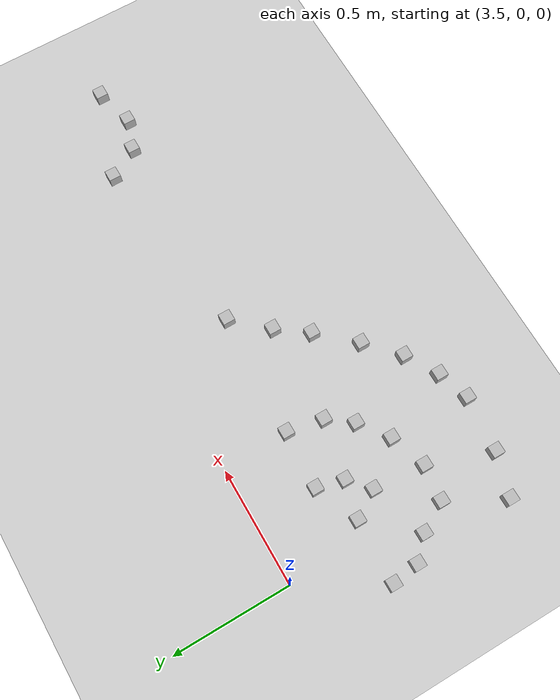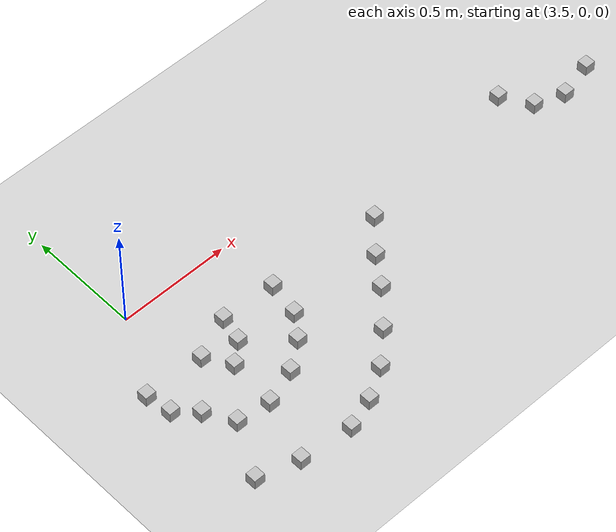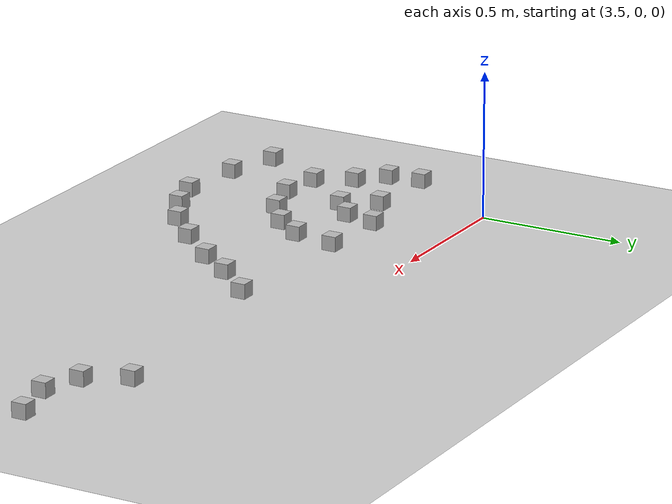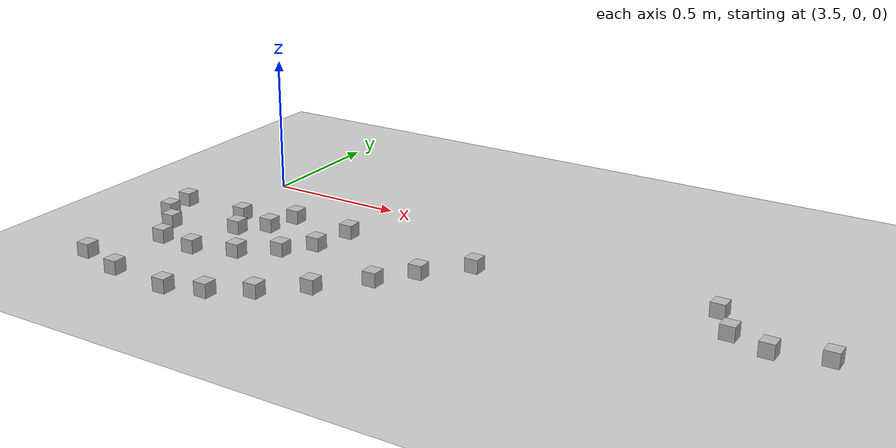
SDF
<sdf version="1.4">
 <world name="default">
  <model name="ground_plane">
   <static>1</static>
   <link name="link">
    <collision name="collision">
     <geometry><plane><normal>0 0 1</normal><size>100 100</size></plane></geometry>
     <surface><friction><ode><mu>100</mu><mu2>50</mu2></ode></friction></surface>
    </collision>
    <visual name="visual">
     <cast_shadows>0</cast_shadows>
     <geometry><plane><normal>0 0 1</normal><size>100 100</size></plane></geometry>
     <material>
      <script><uri>file://media/materials/scripts/gazebo.material</uri><name>Gazebo/Grey</name></script>
     </material>
    </visual>
    <velocity_decay><linear>0</linear><angular>0</angular></velocity_decay>
   </link>
  </model>
  <model name="at11">
   <static>0</static>
   <link name="link">
    <inertial>
     <mass>0.01</mass>
     <inertia><ixx>4e-05</ixx><ixy>0</ixy><ixz>0</ixz><iyy>4e-05</iyy><iyz>0</iyz><izz>4e-05</izz></inertia>
    </inertial>
    <visual name="visual">
     <geometry><box><size>0.05 0.05 0.05</size></box></geometry>
     <material>
      <script>
       <uri>model://at0/materials/scripts</uri>
       <uri>model://at0/materials/textures</uri>
       <name>at0/Diffuse</name>
      </script>
     </material>
    </visual>
    <collision name="collision">
     <geometry><box><size>0.05 0.05 0.05</size></box></geometry>
     <surface><friction><ode><mu>0.8</mu><mu2>0.7</mu2></ode></friction></surface>
    </collision>
    <velocity_decay><linear>0</linear><angular>0</angular></velocity_decay>
   </link>
   <pose>4.53442 -0.307039 0.025 0 -0 0</pose>
  </model>
  <model name="at27">
   <static>0</static>
   <link name="link">
    <inertial>
     <mass>0.01</mass>
     <inertia><ixx>4e-05</ixx><ixy>0</ixy><ixz>0</ixz><iyy>4e-05</iyy><iyz>0</iyz><izz>4e-05</izz></inertia>
    </inertial>
    <visual name="visual">
     <geometry><box><size>0.05 0.05 0.05</size></box></geometry>
     <material>
      <script>
       <uri>model://at0/materials/scripts</uri>
       <uri>model://at0/materials/textures</uri>
       <name>at0/Diffuse</name>
      </script>
     </material>
    </visual>
    <collision name="collision">
     <geometry><box><size>0.05 0.05 0.05</size></box></geometry>
     <surface><friction><ode><mu>0.8</mu><mu2>0.7</mu2></ode></friction></surface>
    </collision>
    <velocity_decay><linear>0</linear><angular>0</angular></velocity_decay>
   </link>
   <pose>4.40493 -0.446845 0.025 0 -0 0</pose>
  </model>
  <model name="at34">
   <static>0</static>
   <link name="link">
    <inertial>
     <mass>0.01</mass>
     <inertia><ixx>4e-05</ixx><ixy>0</ixy><ixz>0</ixz><iyy>4e-05</iyy><iyz>0</iyz><izz>4e-05</izz></inertia>
    </inertial>
    <visual name="visual">
     <geometry><box><size>0.05 0.05 0.05</size></box></geometry>
     <material>
      <script>
       <uri>model://at0/materials/scripts</uri>
       <uri>model://at0/materials/textures</uri>
       <name>at0/Diffuse</name>
      </script>
     </material>
    </visual>
    <collision name="collision">
     <geometry><box><size>0.05 0.05 0.05</size></box></geometry>
     <surface><friction><ode><mu>0.8</mu><mu2>0.7</mu2></ode></friction></surface>
    </collision>
    <velocity_decay><linear>0</linear><angular>0</angular></velocity_decay>
   </link>
   <pose>5.72105 -0.337039 0.025 0 -0 0</pose>
  </model>
  <model name="at38">
   <static>0</static>
   <link name="link">
    <inertial>
     <mass>0.01</mass>
     <inertia><ixx>4e-05</ixx><ixy>0</ixy><ixz>0</ixz><iyy>4e-05</iyy><iyz>0</iyz><izz>4e-05</izz></inertia>
    </inertial>
    <visual name="visual">
     <geometry><box><size>0.05 0.05 0.05</size></box></geometry>
     <material>
      <script>
       <uri>model://at0/materials/scripts</uri>
       <uri>model://at0/materials/textures</uri>
       <name>at0/Diffuse</name>
      </script>
     </material>
    </visual>
    <collision name="collision">
     <geometry><box><size>0.05 0.05 0.05</size></box></geometry>
     <surface><friction><ode><mu>0.8</mu><mu2>0.7</mu2></ode></friction></surface>
    </collision>
    <velocity_decay><linear>0</linear><angular>0</angular></velocity_decay>
   </link>
   <pose>4.31081 -0.573998 0.025 0 -0 0</pose>
  </model>
  <model name="at39">
   <static>0</static>
   <link name="link">
    <inertial>
     <mass>0.01</mass>
     <inertia><ixx>4e-05</ixx><ixy>0</ixy><ixz>0</ixz><iyy>4e-05</iyy><iyz>0</iyz><izz>4e-05</izz></inertia>
    </inertial>
    <visual name="visual">
     <geometry><box><size>0.05 0.05 0.05</size></box></geometry>
     <material>
      <script>
       <uri>model://at0/materials/scripts</uri>
       <uri>model://at0/materials/textures</uri>
       <name>at0/Diffuse</name>
      </script>
     </material>
    </visual>
    <collision name="collision">
     <geometry><box><size>0.05 0.05 0.05</size></box></geometry>
     <surface><friction><ode><mu>0.8</mu><mu2>0.7</mu2></ode></friction></surface>
    </collision>
    <velocity_decay><linear>0</linear><angular>0</angular></velocity_decay>
   </link>
   <pose>3.77122 -0.966515 0.025 0 -0 0</pose>
  </model>
  <model name="at42">
   <static>0</static>
   <link name="link">
    <inertial>
     <mass>0.01</mass>
     <inertia><ixx>4e-05</ixx><ixy>0</ixy><ixz>0</ixz><iyy>4e-05</iyy><iyz>0</iyz><izz>4e-05</izz></inertia>
    </inertial>
    <visual name="visual">
     <geometry><box><size>0.05 0.05 0.05</size></box></geometry>
     <material>
      <script>
       <uri>model://at0/materials/scripts</uri>
       <uri>model://at0/materials/textures</uri>
       <name>at0/Diffuse</name>
      </script>
     </material>
    </visual>
    <collision name="collision">
     <geometry><box><size>0.05 0.05 0.05</size></box></geometry>
     <surface><friction><ode><mu>0.8</mu><mu2>0.7</mu2></ode></friction></surface>
    </collision>
    <velocity_decay><linear>0</linear><angular>0</angular></velocity_decay>
   </link>
   <pose>5.33945 -0.204264 0.025 0 -0 0</pose>
  </model>
  <model name="at46">
   <static>0</static>
   <link name="link">
    <inertial>
     <mass>0.01</mass>
     <inertia><ixx>4e-05</ixx><ixy>0</ixy><ixz>0</ixz><iyy>4e-05</iyy><iyz>0</iyz><izz>4e-05</izz></inertia>
    </inertial>
    <visual name="visual">
     <geometry><box><size>0.05 0.05 0.05</size></box></geometry>
     <material>
      <script>
       <uri>model://at0/materials/scripts</uri>
       <uri>model://at0/materials/textures</uri>
       <name>at0/Diffuse</name>
      </script>
     </material>
    </visual>
    <collision name="collision">
     <geometry><box><size>0.05 0.05 0.05</size></box></geometry>
     <surface><friction><ode><mu>0.8</mu><mu2>0.7</mu2></ode></friction></surface>
    </collision>
    <velocity_decay><linear>0</linear><angular>0</angular></velocity_decay>
   </link>
   <pose>4.17487 -0.722575 0.025 0 -0 0</pose>
  </model>
  <model name="at47">
   <static>0</static>
   <link name="link">
    <inertial>
     <mass>0.01</mass>
     <inertia><ixx>4e-05</ixx><ixy>0</ixy><ixz>0</ixz><iyy>4e-05</iyy><iyz>0</iyz><izz>4e-05</izz></inertia>
    </inertial>
    <visual name="visual">
     <geometry><box><size>0.05 0.05 0.05</size></box></geometry>
     <material>
      <script>
       <uri>model://at0/materials/scripts</uri>
       <uri>model://at0/materials/textures</uri>
       <name>at0/Diffuse</name>
      </script>
     </material>
    </visual>
    <collision name="collision">
     <geometry><box><size>0.05 0.05 0.05</size></box></geometry>
     <surface><friction><ode><mu>0.8</mu><mu2>0.7</mu2></ode></friction></surface>
    </collision>
    <velocity_decay><linear>0</linear><angular>0</angular></velocity_decay>
   </link>
   <pose>3.53615 -0.942051 0.025 0 -0 0</pose>
  </model>
  <model name="at52">
   <static>0</static>
   <link name="link">
    <inertial>
     <mass>0.01</mass>
     <inertia><ixx>4e-05</ixx><ixy>0</ixy><ixz>0</ixz><iyy>4e-05</iyy><iyz>0</iyz><izz>4e-05</izz></inertia>
    </inertial>
    <visual name="visual">
     <geometry><box><size>0.05 0.05 0.05</size></box></geometry>
     <material>
      <script>
       <uri>model://at0/materials/scripts</uri>
       <uri>model://at0/materials/textures</uri>
       <name>at0/Diffuse</name>
      </script>
     </material>
    </visual>
    <collision name="collision">
     <geometry><box><size>0.05 0.05 0.05</size></box></geometry>
     <surface><friction><ode><mu>0.8</mu><mu2>0.7</mu2></ode></friction></surface>
    </collision>
    <velocity_decay><linear>0</linear><angular>0</angular></velocity_decay>
   </link>
   <pose>5.41615 -0.334873 0.025 0 -0 0</pose>
  </model>
  <model name="at53">
   <static>0</static>
   <link name="link">
    <inertial>
     <mass>0.01</mass>
     <inertia><ixx>4e-05</ixx><ixy>0</ixy><ixz>0</ixz><iyy>4e-05</iyy><iyz>0</iyz><izz>4e-05</izz></inertia>
    </inertial>
    <visual name="visual">
     <geometry><box><size>0.05 0.05 0.05</size></box></geometry>
     <material>
      <script>
       <uri>model://at0/materials/scripts</uri>
       <uri>model://at0/materials/textures</uri>
       <name>at0/Diffuse</name>
      </script>
     </material>
    </visual>
    <collision name="collision">
     <geometry><box><size>0.05 0.05 0.05</size></box></geometry>
     <surface><friction><ode><mu>0.8</mu><mu2>0.7</mu2></ode></friction></surface>
    </collision>
    <velocity_decay><linear>0</linear><angular>0</angular></velocity_decay>
   </link>
   <pose>5.54955 -0.381223 0.025 0 -0 0</pose>
  </model>
  <model name="at54">
   <static>0</static>
   <link name="link">
    <inertial>
     <mass>0.01</mass>
     <inertia><ixx>4e-05</ixx><ixy>0</ixy><ixz>0</ixz><iyy>4e-05</iyy><iyz>0</iyz><izz>4e-05</izz></inertia>
    </inertial>
    <visual name="visual">
     <geometry><box><size>0.05 0.05 0.05</size></box></geometry>
     <material>
      <script>
       <uri>model://at0/materials/scripts</uri>
       <uri>model://at0/materials/textures</uri>
       <name>at0/Diffuse</name>
      </script>
     </material>
    </visual>
    <collision name="collision">
     <geometry><box><size>0.05 0.05 0.05</size></box></geometry>
     <surface><friction><ode><mu>0.8</mu><mu2>0.7</mu2></ode></friction></surface>
    </collision>
    <velocity_decay><linear>0</linear><angular>0</angular></velocity_decay>
   </link>
   <pose>4.0427 -0.843472 0.025 0 -0 0</pose>
  </model>
  <model name="at55">
   <static>0</static>
   <link name="link">
    <inertial>
     <mass>0.01</mass>
     <inertia><ixx>4e-05</ixx><ixy>0</ixy><ixz>0</ixz><iyy>4e-05</iyy><iyz>0</iyz><izz>4e-05</izz></inertia>
    </inertial>
    <visual name="visual">
     <geometry><box><size>0.05 0.05 0.05</size></box></geometry>
     <material>
      <script>
       <uri>model://at0/materials/scripts</uri>
       <uri>model://at0/materials/textures</uri>
       <name>at0/Diffuse</name>
      </script>
     </material>
    </visual>
    <collision name="collision">
     <geometry><box><size>0.05 0.05 0.05</size></box></geometry>
     <surface><friction><ode><mu>0.8</mu><mu2>0.7</mu2></ode></friction></surface>
    </collision>
    <velocity_decay><linear>0</linear><angular>0</angular></velocity_decay>
   </link>
   <pose>3.35583 -0.887326 0.025 0 -0 0</pose>
  </model>
  <model name="at62">
   <static>0</static>
   <link name="link">
    <inertial>
     <mass>0.01</mass>
     <inertia><ixx>4e-05</ixx><ixy>0</ixy><ixz>0</ixz><iyy>4e-05</iyy><iyz>0</iyz><izz>4e-05</izz></inertia>
    </inertial>
    <visual name="visual">
     <geometry><box><size>0.05 0.05 0.05</size></box></geometry>
     <material>
      <script>
       <uri>model://at0/materials/scripts</uri>
       <uri>model://at0/materials/textures</uri>
       <name>at0/Diffuse</name>
      </script>
     </material>
    </visual>
    <collision name="collision">
     <geometry><box><size>0.05 0.05 0.05</size></box></geometry>
     <surface><friction><ode><mu>0.8</mu><mu2>0.7</mu2></ode></friction></surface>
    </collision>
    <velocity_decay><linear>0</linear><angular>0</angular></velocity_decay>
   </link>
   <pose>3.90688 -0.92268 0.025 0 -0 0</pose>
  </model>
  <model name="at151">
   <static>0</static>
   <link name="link">
    <inertial>
     <mass>0.01</mass>
     <inertia><ixx>4e-05</ixx><ixy>0</ixy><ixz>0</ixz><iyy>4e-05</iyy><iyz>0</iyz><izz>4e-05</izz></inertia>
    </inertial>
    <visual name="visual">
     <geometry><box><size>0.05 0.05 0.05</size></box></geometry>
     <material>
      <script>
       <uri>model://at0/materials/scripts</uri>
       <uri>model://at0/materials/textures</uri>
       <name>at0/Diffuse</name>
      </script>
     </material>
    </visual>
    <collision name="collision">
     <geometry><box><size>0.05 0.05 0.05</size></box></geometry>
     <surface><friction><ode><mu>0.8</mu><mu2>0.7</mu2></ode></friction></surface>
    </collision>
    <velocity_decay><linear>0</linear><angular>0</angular></velocity_decay>
   </link>
   <pose>4.01057 -0.280774 0.025 0 -0 0</pose>
  </model>
  <model name="at159">
   <static>0</static>
   <link name="link">
    <inertial>
     <mass>0.01</mass>
     <inertia><ixx>4e-05</ixx><ixy>0</ixy><ixz>0</ixz><iyy>4e-05</iyy><iyz>0</iyz><izz>4e-05</izz></inertia>
    </inertial>
    <visual name="visual">
     <geometry><box><size>0.05 0.05 0.05</size></box></geometry>
     <material>
      <script>
       <uri>model://at0/materials/scripts</uri>
       <uri>model://at0/materials/textures</uri>
       <name>at0/Diffuse</name>
      </script>
     </material>
    </visual>
    <collision name="collision">
     <geometry><box><size>0.05 0.05 0.05</size></box></geometry>
     <surface><friction><ode><mu>0.8</mu><mu2>0.7</mu2></ode></friction></surface>
    </collision>
    <velocity_decay><linear>0</linear><angular>0</angular></velocity_decay>
   </link>
   <pose>3.78361 -0.621807 0.025 0 -0 0</pose>
  </model>
  <model name="at164">
   <static>0</static>
   <link name="link">
    <inertial>
     <mass>0.01</mass>
     <inertia><ixx>4e-05</ixx><ixy>0</ixy><ixz>0</ixz><iyy>4e-05</iyy><iyz>0</iyz><izz>4e-05</izz></inertia>
    </inertial>
    <visual name="visual">
     <geometry><box><size>0.05 0.05 0.05</size></box></geometry>
     <material>
      <script>
       <uri>model://at0/materials/scripts</uri>
       <uri>model://at0/materials/textures</uri>
       <name>at0/Diffuse</name>
      </script>
     </material>
    </visual>
    <collision name="collision">
     <geometry><box><size>0.05 0.05 0.05</size></box></geometry>
     <surface><friction><ode><mu>0.8</mu><mu2>0.7</mu2></ode></friction></surface>
    </collision>
    <velocity_decay><linear>0</linear><angular>0</angular></velocity_decay>
   </link>
   <pose>3.31238 -0.334969 0.025 0 -0 0</pose>
  </model>
  <model name="at165">
   <static>0</static>
   <link name="link">
    <inertial>
     <mass>0.01</mass>
     <inertia><ixx>4e-05</ixx><ixy>0</ixy><ixz>0</ixz><iyy>4e-05</iyy><iyz>0</iyz><izz>4e-05</izz></inertia>
    </inertial>
    <visual name="visual">
     <geometry><box><size>0.05 0.05 0.05</size></box></geometry>
     <material>
      <script>
       <uri>model://at0/materials/scripts</uri>
       <uri>model://at0/materials/textures</uri>
       <name>at0/Diffuse</name>
      </script>
     </material>
    </visual>
    <collision name="collision">
     <geometry><box><size>0.05 0.05 0.05</size></box></geometry>
     <surface><friction><ode><mu>0.8</mu><mu2>0.7</mu2></ode></friction></surface>
    </collision>
    <velocity_decay><linear>0</linear><angular>0</angular></velocity_decay>
   </link>
   <pose>3.73538 -0.380943 0.025 0 -0 0</pose>
  </model>
  <model name="at167">
   <static>0</static>
   <link name="link">
    <inertial>
     <mass>0.01</mass>
     <inertia><ixx>4e-05</ixx><ixy>0</ixy><ixz>0</ixz><iyy>4e-05</iyy><iyz>0</iyz><izz>4e-05</izz></inertia>
    </inertial>
    <visual name="visual">
     <geometry><box><size>0.05 0.05 0.05</size></box></geometry>
     <material>
      <script>
       <uri>model://at0/materials/scripts</uri>
       <uri>model://at0/materials/textures</uri>
       <name>at0/Diffuse</name>
      </script>
     </material>
    </visual>
    <collision name="collision">
     <geometry><box><size>0.05 0.05 0.05</size></box></geometry>
     <surface><friction><ode><mu>0.8</mu><mu2>0.7</mu2></ode></friction></surface>
    </collision>
    <velocity_decay><linear>0</linear><angular>0</angular></velocity_decay>
   </link>
   <pose>3.48064 -0.655085 0.025 0 -0 0</pose>
  </model>
  <model name="at173">
   <static>0</static>
   <link name="link">
    <inertial>
     <mass>0.01</mass>
     <inertia><ixx>4e-05</ixx><ixy>0</ixy><ixz>0</ixz><iyy>4e-05</iyy><iyz>0</iyz><izz>4e-05</izz></inertia>
    </inertial>
    <visual name="visual">
     <geometry><box><size>0.05 0.05 0.05</size></box></geometry>
     <material>
      <script>
       <uri>model://at0/materials/scripts</uri>
       <uri>model://at0/materials/textures</uri>
       <name>at0/Diffuse</name>
      </script>
     </material>
    </visual>
    <collision name="collision">
     <geometry><box><size>0.05 0.05 0.05</size></box></geometry>
     <surface><friction><ode><mu>0.8</mu><mu2>0.7</mu2></ode></friction></surface>
    </collision>
    <velocity_decay><linear>0</linear><angular>0</angular></velocity_decay>
   </link>
   <pose>3.76507 -0.266484 0.025 0 -0 0</pose>
  </model>
  <model name="at180">
   <static>0</static>
   <link name="link">
    <inertial>
     <mass>0.01</mass>
     <inertia><ixx>4e-05</ixx><ixy>0</ixy><ixz>0</ixz><iyy>4e-05</iyy><iyz>0</iyz><izz>4e-05</izz></inertia>
    </inertial>
    <visual name="visual">
     <geometry><box><size>0.05 0.05 0.05</size></box></geometry>
     <material>
      <script>
       <uri>model://at0/materials/scripts</uri>
       <uri>model://at0/materials/textures</uri>
       <name>at0/Diffuse</name>
      </script>
     </material>
    </visual>
    <collision name="collision">
     <geometry><box><size>0.05 0.05 0.05</size></box></geometry>
     <surface><friction><ode><mu>0.8</mu><mu2>0.7</mu2></ode></friction></surface>
    </collision>
    <velocity_decay><linear>0</linear><angular>0</angular></velocity_decay>
   </link>
   <pose>3.32873 -0.450599 0.025 0 -0 0</pose>
  </model>
  <model name="at181">
   <static>0</static>
   <link name="link">
    <inertial>
     <mass>0.01</mass>
     <inertia><ixx>4e-05</ixx><ixy>0</ixy><ixz>0</ixz><iyy>4e-05</iyy><iyz>0</iyz><izz>4e-05</izz></inertia>
    </inertial>
    <visual name="visual">
     <geometry><box><size>0.05 0.05 0.05</size></box></geometry>
     <material>
      <script>
       <uri>model://at0/materials/scripts</uri>
       <uri>model://at0/materials/textures</uri>
       <name>at0/Diffuse</name>
      </script>
     </material>
    </visual>
    <collision name="collision">
     <geometry><box><size>0.05 0.05 0.05</size></box></geometry>
     <surface><friction><ode><mu>0.8</mu><mu2>0.7</mu2></ode></friction></surface>
    </collision>
    <velocity_decay><linear>0</linear><angular>0</angular></velocity_decay>
   </link>
   <pose>3.64907 -0.455953 0.025 0 -0 0</pose>
  </model>
  <model name="at182">
   <static>0</static>
   <link name="link">
    <inertial>
     <mass>0.01</mass>
     <inertia><ixx>4e-05</ixx><ixy>0</ixy><ixz>0</ixz><iyy>4e-05</iyy><iyz>0</iyz><izz>4e-05</izz></inertia>
    </inertial>
    <visual name="visual">
     <geometry><box><size>0.05 0.05 0.05</size></box></geometry>
     <material>
      <script>
       <uri>model://at0/materials/scripts</uri>
       <uri>model://at0/materials/textures</uri>
       <name>at0/Diffuse</name>
      </script>
     </material>
    </visual>
    <collision name="collision">
     <geometry><box><size>0.05 0.05 0.05</size></box></geometry>
     <surface><friction><ode><mu>0.8</mu><mu2>0.7</mu2></ode></friction></surface>
    </collision>
    <velocity_decay><linear>0</linear><angular>0</angular></velocity_decay>
   </link>
   <pose>3.4116 -0.533452 0.025 0 -0 0</pose>
  </model>
  <model name="at183">
   <static>0</static>
   <link name="link">
    <inertial>
     <mass>0.01</mass>
     <inertia><ixx>4e-05</ixx><ixy>0</ixy><ixz>0</ixz><iyy>4e-05</iyy><iyz>0</iyz><izz>4e-05</izz></inertia>
    </inertial>
    <visual name="visual">
     <geometry><box><size>0.05 0.05 0.05</size></box></geometry>
     <material>
      <script>
       <uri>model://at0/materials/scripts</uri>
       <uri>model://at0/materials/textures</uri>
       <name>at0/Diffuse</name>
      </script>
     </material>
    </visual>
    <collision name="collision">
     <geometry><box><size>0.05 0.05 0.05</size></box></geometry>
     <surface><friction><ode><mu>0.8</mu><mu2>0.7</mu2></ode></friction></surface>
    </collision>
    <velocity_decay><linear>0</linear><angular>0</angular></velocity_decay>
   </link>
   <pose>3.62934 -0.673757 0.025 0 -0 0</pose>
  </model>
  <model name="at188">
   <static>0</static>
   <link name="link">
    <inertial>
     <mass>0.01</mass>
     <inertia><ixx>4e-05</ixx><ixy>0</ixy><ixz>0</ixz><iyy>4e-05</iyy><iyz>0</iyz><izz>4e-05</izz></inertia>
    </inertial>
    <visual name="visual">
     <geometry><box><size>0.05 0.05 0.05</size></box></geometry>
     <material>
      <script>
       <uri>model://at0/materials/scripts</uri>
       <uri>model://at0/materials/textures</uri>
       <name>at0/Diffuse</name>
      </script>
     </material>
    </visual>
    <collision name="collision">
     <geometry><box><size>0.05 0.05 0.05</size></box></geometry>
     <surface><friction><ode><mu>0.8</mu><mu2>0.7</mu2></ode></friction></surface>
    </collision>
    <velocity_decay><linear>0</linear><angular>0</angular></velocity_decay>
   </link>
   <pose>3.90456 -0.533591 0.025 0 -0 0</pose>
  </model>
  <model name="at189">
   <static>0</static>
   <link name="link">
    <inertial>
     <mass>0.01</mass>
     <inertia><ixx>4e-05</ixx><ixy>0</ixy><ixz>0</ixz><iyy>4e-05</iyy><iyz>0</iyz><izz>4e-05</izz></inertia>
    </inertial>
    <visual name="visual">
     <geometry><box><size>0.05 0.05 0.05</size></box></geometry>
     <material>
      <script>
       <uri>model://at0/materials/scripts</uri>
       <uri>model://at0/materials/textures</uri>
       <name>at0/Diffuse</name>
      </script>
     </material>
    </visual>
    <collision name="collision">
     <geometry><box><size>0.05 0.05 0.05</size></box></geometry>
     <surface><friction><ode><mu>0.8</mu><mu2>0.7</mu2></ode></friction></surface>
    </collision>
    <velocity_decay><linear>0</linear><angular>0</angular></velocity_decay>
   </link>
   <pose>3.5806 -0.343633 0.025 0 -0 0</pose>
  </model>
  <model name="at190">
   <static>0</static>
   <link name="link">
    <inertial>
     <mass>0.01</mass>
     <inertia><ixx>4e-05</ixx><ixy>0</ixy><ixz>0</ixz><iyy>4e-05</iyy><iyz>0</iyz><izz>4e-05</izz></inertia>
    </inertial>
    <visual name="visual">
     <geometry><box><size>0.05 0.05 0.05</size></box></geometry>
     <material>
      <script>
       <uri>model://at0/materials/scripts</uri>
       <uri>model://at0/materials/textures</uri>
       <name>at0/Diffuse</name>
      </script>
     </material>
    </visual>
    <collision name="collision">
     <geometry><box><size>0.05 0.05 0.05</size></box></geometry>
     <surface><friction><ode><mu>0.8</mu><mu2>0.7</mu2></ode></friction></surface>
    </collision>
    <velocity_decay><linear>0</linear><angular>0</angular></velocity_decay>
   </link>
   <pose>3.98063 -0.432768 0.025 0 -0 0</pose>
  </model>
 </world>
</sdf>
